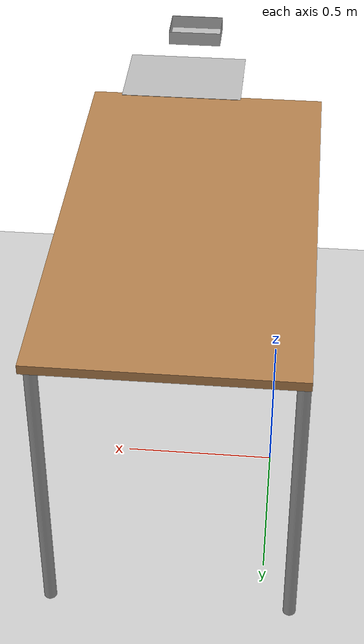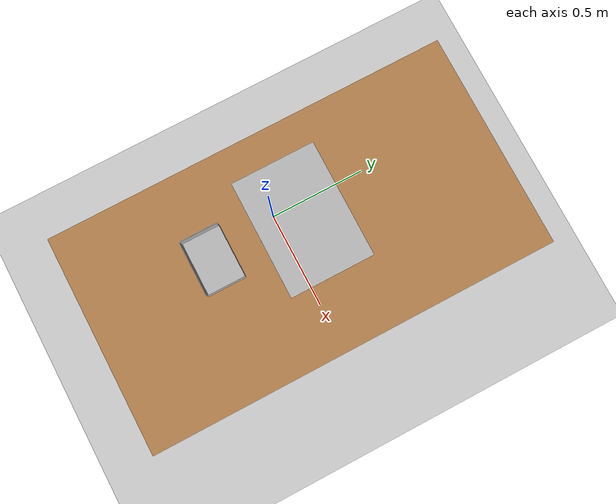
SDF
<?xml version="1.0" ?>
<sdf version="1.6">
  <world name="CRANE-X7 with Table">

    <include>
      <uri>model://sun</uri>
    </include>

    <model name="table">
      <include>
        <uri>model://table</uri>
      </include>

      <!-- X7を机の端に配置するため、机を移動、回転する -->
      <pose>0.29 0 0 0 0 1.5708</pose>
    </model>

	<model name="water_bowl">
	 <include>
	  <uri>model://water_bowl</uri>
	 </include>
	 <pose>0.29 -0.25 1.5 0 0 0</pose>
	</model>

    <model name="paper">
     <pose>0.30 0 1.5 0 0 0</pose>
      <link name="link">
	<inertial>
	 <mass>1.0</mass>
	 <inertia>
	  <ixx>0.083</ixx>
 	  <ixy>0.0</ixy>
	  <ixz>0.0</ixz>
	  <iyy>0.083</iyy>
	  <iyz>0.0</iyz>
	  <izz>0.083</izz>
	 </inertia>
       </inertial>
       <collision name="collision">
	  <geometry>
		  <box>
			  <size>0.335 0.240 0.001</size>
		  </box>
	  </geometry>
       </collision>
     <visual name="visual">
      <geometry>
	      <box>
		<size>0.335 0.240 0.001</size>
	      </box>
      </geometry>
       <material name="white">
	       <color rgba="255 255 255 1"/>
       </material>
      </visual>
     </link>
     <joint name="bunchin" type="fixed">
	     <parent>table::lilnk</parent>
	     <child>papre::link</child>
     </joint>
    </model>

    <model name="ground_plane">
      <include>
        <uri>model://ground_plane</uri>
      </include>

      <joint name='ground_joint' type='fixed'>
        <parent>ground_plane::link</parent>
	<child>table::link</child>
      </joint>
    </model>
  </world>
</sdf>

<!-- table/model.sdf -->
<sdf version="1.5">
  <model name="table">
    <static>true</static>
    <link name="link">
      <collision name="surface">
        <pose>0 0 1.0 0 0 0</pose>
        <geometry>
          <box>
            <size>1.5 0.8 0.03</size>
          </box>
        </geometry>
        <surface>
          <friction>
            <ode>
              <mu>0.6</mu>
              <mu2>0.6</mu2>
            </ode>
          </friction>
        </surface>
      </collision>
      <visual name="visual1">
        <pose>0 0 1.0 0 0 0</pose>
        <geometry>
          <box>
            <size>1.5 0.8 0.03</size>
          </box>
        </geometry>
        <material>
          <script>
            <uri>model://media/materials/scripts/gazebo.material</uri>
            <name>Gazebo/Wood</name>
          </script>
        </material>
      </visual>
      <collision name="front_left_leg">
        <pose>0.68 0.38 0.5 0 0 0</pose>
        <geometry>
          <cylinder>
            <radius>0.02</radius>
            <length>1.0</length>
          </cylinder>
        </geometry>
      </collision>
      <visual name="front_left_leg">
        <pose>0.68 0.38 0.5 0 0 0</pose>
        <geometry>
          <cylinder>
            <radius>0.02</radius>
            <length>1.0</length>
          </cylinder>
        </geometry>
        <material>
          <script>
            <uri>model://media/materials/scripts/gazebo.material</uri>
            <name>Gazebo/Grey</name>
          </script>
        </material>
      </visual>
      <collision name="front_right_leg">
        <pose>0.68 -0.38 0.5 0 0 0</pose>
        <geometry>
          <cylinder>
            <radius>0.02</radius>
            <length>1.0</length>
          </cylinder>
        </geometry>
      </collision>
      <visual name="front_right_leg">
        <pose>0.68 -0.38 0.5 0 0 0</pose>
        <geometry>
          <cylinder>
            <radius>0.02</radius>
            <length>1.0</length>
          </cylinder>
        </geometry>
        <material>
          <script>
            <uri>model://media/materials/scripts/gazebo.material</uri>
            <name>Gazebo/Grey</name>
          </script>
        </material>
      </visual>
      <collision name="back_right_leg">
        <pose>-0.68 -0.38 0.5 0 0 0</pose>
        <geometry>
          <cylinder>
            <radius>0.02</radius>
            <length>1.0</length>
          </cylinder>
        </geometry>
      </collision>
      <visual name="back_right_leg">
        <pose>-0.68 -0.38 0.5 0 0 0</pose>
        <geometry>
          <cylinder>
            <radius>0.02</radius>
            <length>1.0</length>
          </cylinder>
        </geometry>
        <material>
          <script>
            <uri>model://media/materials/scripts/gazebo.material</uri>
            <name>Gazebo/Grey</name>
          </script>
        </material>
      </visual>
      <collision name="back_left_leg">
        <pose>-0.68 0.38 0.5 0 0 0</pose>
        <geometry>
          <cylinder>
            <radius>0.02</radius>
            <length>1.0</length>
          </cylinder>
        </geometry>
      </collision>
      <visual name="back_left_leg">
        <pose>-0.68 0.38 0.5 0 0 0</pose>
        <geometry>
          <cylinder>
            <radius>0.02</radius>
            <length>1.0</length>
          </cylinder>
        </geometry>
        <material>
          <script>
            <uri>model://media/materials/scripts/gazebo.material</uri>
            <name>Gazebo/Grey</name>
          </script>
        </material>
      </visual>
    </link>
  </model>
</sdf>

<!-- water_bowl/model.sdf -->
<sdf version="1.4">
<model name="water_bowl">
	<pose>0 0 0 0 0 0</pose>
	<link name="link">
		<inertial>
			<mass>1.0</mass>
			<inertia>
				<ixx>0.0</ixx>
				<ixy>0.0</ixy>
				<ixz>0.0</ixz>
				<iyy>0.0</iyy>
				<iyz>0.0</iyz>
				<izz>0.0</izz>
			</inertia>
		</inertial>
		<collision name="collision">
			<geometry>
				<mesh>
					<uri>model://water_bowl/water_bowl.dae</uri>
				</mesh>
			</geometry>
		</collision>
		<visual name="visual">
			<geometry>
				<mesh>
					<uri>model://water_bowl/water_bowl.dae</uri>
				</mesh>
			</geometry>
		</visual>
	</link>
</model>
</sdf>
